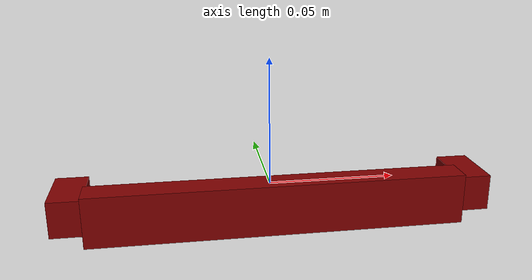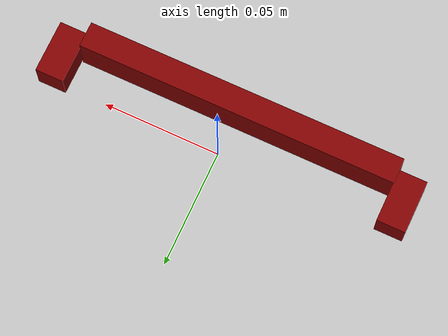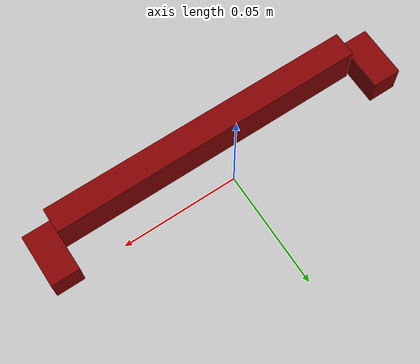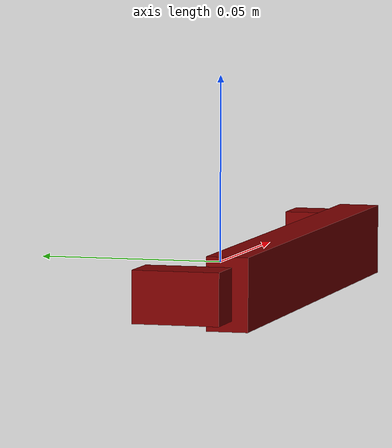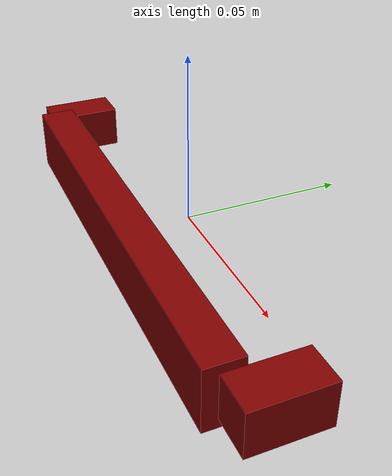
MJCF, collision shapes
<mujoco model="flat_rectangular_handle">
    <compiler angle="radian"/>
    <asset>
        <mesh file="visuals/CabinetHandle002.obj" name="mesh"/>
        <texture file="visuals/T_CabinetHandle002_BC001.png" name="tex" type="2d"/>
        <material name="mat" rgba="1 1 1 1" texture="tex"/>
    </asset>
    <default>
        <default class="visual">
            <geom conaffinity="0" contype="0" group="1" type="mesh"/>
        </default>
        <default class="collision">
            <geom group="0" rgba="0.5 0 0 0.5"/>
        </default>
    </default>
    <worldbody>
        <body>
            <body name="object">
                <geom mesh="mesh" type="mesh" solimp="0.998 0.998 0.001" solref="0.001 1" density="100" friction="0.95 0.3 0.1" class="visual" material="mat"/>
                <geom class="collision" type="box" pos="0.0748768299818039 -0.011000003665685654 0.0" size="0.006083001382648945 0.011317244730889797 0.00678551709279418" quat="1.0 0.0 0.0 0.0" name="handle_connector_top"/>
                <geom class="collision" type="box" pos="-0.07480158656835556 -0.011000003665685654 0.0" size="0.006083001382648945 0.011317244730889797 0.00678551709279418" quat="1.0 0.0 0.0 0.0" name="handle_connector_bottom"/>
                <geom class="collision" type="box" pos="-3.0074268579483032e-05 -0.021065378561615944 -0.00010767466301331297" size="0.005450711119920015 0.06891729682683945 0.009483992122113705" quat="0.7071067690849304 0.0 0.0 0.7071067690849304" name="handle"/>
            </body>
        </body>
    </worldbody>
    <actuator/>
</mujoco>
